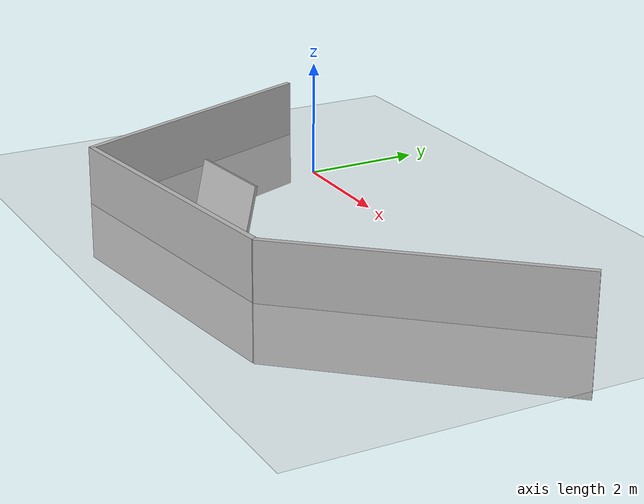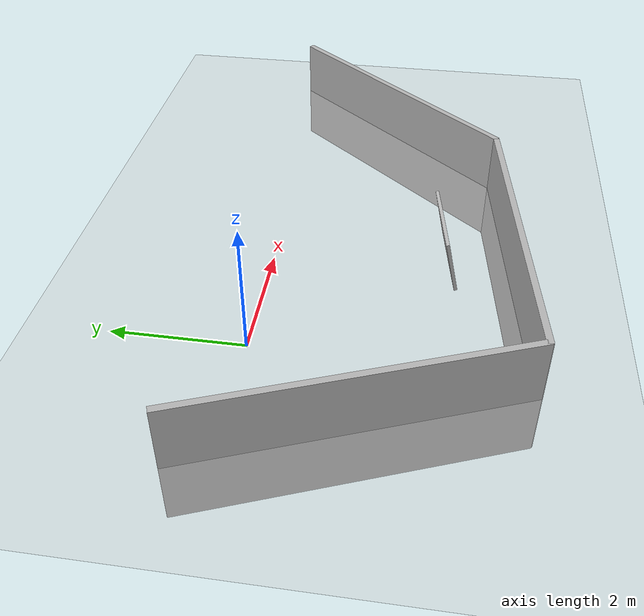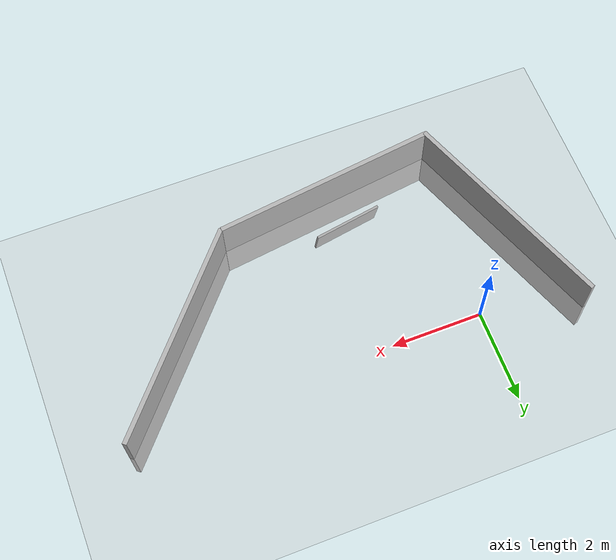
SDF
<sdf version="1.7">
 <world name="default">
  <light name="sun" type="directional">
   <pose>0 0 10 0 -0 0</pose>
   <diffuse>0.8 0.8 0.8 1</diffuse>
   <specular>0.2 0.2 0.2 1</specular>
   <attenuation>
    <range>1000</range>
    <constant>0.9</constant>
    <linear>0.01</linear>
    <quadratic>0.001</quadratic>
   </attenuation>
   <direction>-0.5 0.1 -0.9</direction>
   <spot><inner_angle>0</inner_angle><outer_angle>0</outer_angle><falloff>0</falloff></spot>
  </light>
  <model name="ground_plane">
   <static>1</static>
   <link name="link">
    <collision name="collision">
     <geometry><plane><normal>0 0 1</normal><size>100 100</size></plane></geometry>
     <surface>
      <contact><collide_bitmask>65535</collide_bitmask></contact>
      <friction><ode><mu>100</mu><mu2>50</mu2></ode></friction>
     </surface>
    </collision>
    <visual name="visual">
     <cast_shadows>0</cast_shadows>
     <geometry><plane><normal>0 0 1</normal><size>100 100</size></plane></geometry>
     <material>
      <script><uri>file://media/materials/scripts/gazebo.material</uri><name>Gazebo/Grey</name></script>
     </material>
    </visual>
   </link>
  </model>
  <gravity>0 0 -9.8</gravity>
  <magnetic_field>6e-06 2.3e-05 -4.2e-05</magnetic_field>
  <atmosphere type="adiabatic"/>
  <physics type="ode">
   <max_step_size>0.001</max_step_size>
   <real_time_factor>1</real_time_factor>
   <real_time_update_rate>1000</real_time_update_rate>
  </physics>
  <scene><ambient>0.4 0.4 0.4 1</ambient><background>0.7 0.7 0.7 1</background><shadows>1</shadows></scene>
  <audio><device>default</device></audio>
  <spherical_coordinates>
   <surface_model>EARTH_WGS84</surface_model>
   <latitude_deg>0</latitude_deg>
   <longitude_deg>0</longitude_deg>
   <elevation>0</elevation>
   <heading_deg>0</heading_deg>
  </spherical_coordinates>
  <model name="room_wall_2x5m">
   <link name="link">
    <visual name="visual">
     <geometry><box><size>0.1 5 2</size></box></geometry>
     <material>
      <script>
       <uri>https://fuel.ignitionrobotics.org/1.0/makerspet/models/room_wall_2x5m/1/files/material/script</uri>
       <uri>https://fuel.ignitionrobotics.org/1.0/makerspet/models/room_wall_2x5m/1/files/material/textures</uri>
       <name>Custom/room_wall_2x5m</name>
      </script>
     </material>
    </visual>
    <collision name="collision"><geometry><box><size>0.1 5 2</size></box></geometry></collision>
   </link>
   <static>1</static>
   <pose>2.08517 -3.7155 0 0 0 -1.44633</pose>
  </model>
  <model name="room_wall_2x5m_clone">
   <link name="link">
    <visual name="visual">
     <geometry><box><size>0.1 5 2</size></box></geometry>
     <material>
      <script>
       <uri>https://fuel.ignitionrobotics.org/1.0/makerspet/models/room_wall_2x5m/1/files/material/script</uri>
       <uri>https://fuel.ignitionrobotics.org/1.0/makerspet/models/room_wall_2x5m/1/files/material/textures</uri>
       <name>Custom/room_wall_2x5m</name>
      </script>
     </material>
    </visual>
    <collision name="collision"><geometry><box><size>0.1 5 2</size></box></geometry></collision>
   </link>
   <static>1</static>
   <pose>6.20553 -1.53694 0 0 -0 2.42479</pose>
  </model>
  <model name="room_wall_2x5m_clone_0">
   <link name="link">
    <visual name="visual">
     <geometry><box><size>0.1 5 2</size></box></geometry>
     <material>
      <script>
       <uri>https://fuel.ignitionrobotics.org/1.0/makerspet/models/room_wall_2x5m/1/files/material/script</uri>
       <uri>https://fuel.ignitionrobotics.org/1.0/makerspet/models/room_wall_2x5m/1/files/material/textures</uri>
       <name>Custom/room_wall_2x5m</name>
      </script>
     </material>
    </visual>
    <collision name="collision"><geometry><box><size>0.1 5 2</size></box></geometry></collision>
   </link>
   <static>1</static>
   <pose>-1.25987 -1.71686 0 0 0 -2.77101</pose>
  </model>
  <model name="tv_65in_emissive">
   <link name="link">
    <visual name="visual">
     <geometry><box><size>0.05 1.45 0.83</size></box></geometry>
     <material>
      <script>
       <uri>https://fuel.ignitionrobotics.org/1.0/makerspet/models/tv_65in_emissive/1/files/material/script</uri>
       <uri>https://fuel.ignitionrobotics.org/1.0/makerspet/models/tv_65in_emissive/1/files/material/textures</uri>
       <name>Custom/tv_emissive</name>
      </script>
     </material>
    </visual>
   </link>
   <static>1</static>
   <pose>2.02246 -2.66697 0.662322 0.031025 0.212354 1.72549</pose>
  </model>
 </world>
</sdf>
